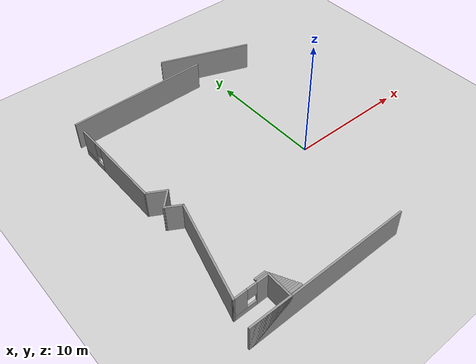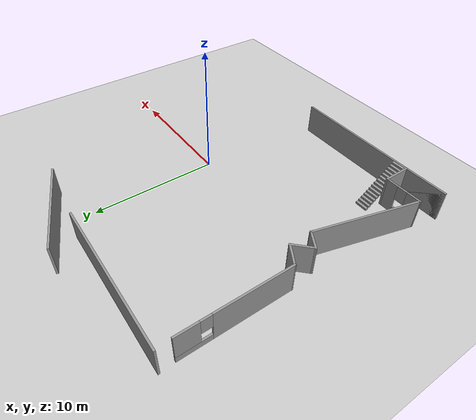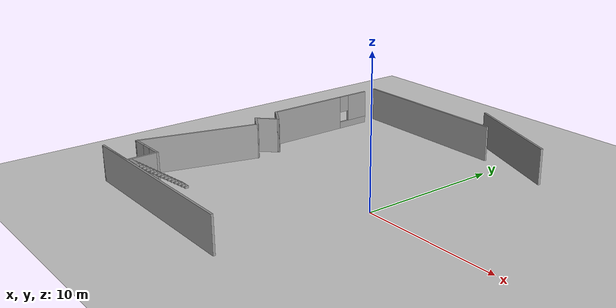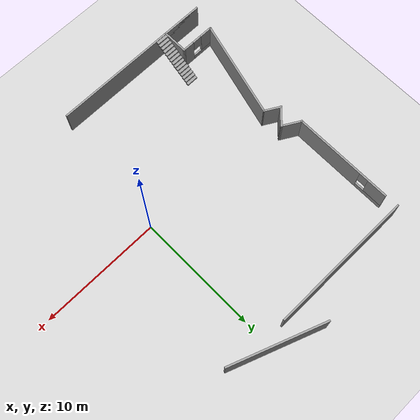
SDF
<sdf version="1.6">
 <world name="default">
  <model name="ground_plane">
   <static>1</static>
   <link name="link">
    <collision name="collision">
     <geometry><plane><normal>0 0 1</normal><size>100 100</size></plane></geometry>
     <surface><friction><ode><mu>100</mu><mu2>50</mu2></ode></friction></surface>
    </collision>
    <visual name="visual">
     <cast_shadows>0</cast_shadows>
     <geometry><plane><normal>0 0 1</normal><size>100 100</size></plane></geometry>
     <material>
      <script><uri>file://media/materials/scripts/gazebo.material</uri><name>Gazebo/Grey</name></script>
     </material>
    </visual>
   </link>
  </model>
  <model name="cierre_slaw_world_0">
   <link name="Stairs_0">
    <visual name="Stairs_0_Visual_0">
     <pose>-4.59466 -7.51518 0.083333 0 -0 0</pose>
     <geometry><box><size>1 0.233333 0.166667</size></box></geometry>
     <material>
      <script><uri>file://media/materials/scripts/gazebo.material</uri><name>Gazebo/Grey</name></script>
      <ambient>1 1 1 1</ambient>
      <diffuse>0.7 0.7 0.7 1</diffuse>
      <specular>0.01 0.01 0.01 1</specular>
      <emissive>0 0 0 1</emissive>
     </material>
    </visual>
    <visual name="Stairs_0_Visual_1">
     <pose>-4.59466 -7.74852 0.25 0 -0 0</pose>
     <geometry><box><size>1 0.233333 0.166667</size></box></geometry>
     <material>
      <script><uri>file://media/materials/scripts/gazebo.material</uri><name>Gazebo/Grey</name></script>
      <ambient>1 1 1 1</ambient>
      <diffuse>0.7 0.7 0.7 1</diffuse>
      <specular>0.01 0.01 0.01 1</specular>
      <emissive>0 0 0 1</emissive>
     </material>
    </visual>
    <visual name="Stairs_0_Visual_2">
     <pose>-4.59466 -7.98185 0.416667 0 -0 0</pose>
     <geometry><box><size>1 0.233333 0.166667</size></box></geometry>
     <material>
      <script><uri>file://media/materials/scripts/gazebo.material</uri><name>Gazebo/Grey</name></script>
      <ambient>1 1 1 1</ambient>
      <diffuse>0.7 0.7 0.7 1</diffuse>
      <specular>0.01 0.01 0.01 1</specular>
      <emissive>0 0 0 1</emissive>
     </material>
    </visual>
    <visual name="Stairs_0_Visual_3">
     <pose>-4.59466 -8.21518 0.583333 0 -0 0</pose>
     <geometry><box><size>1 0.233333 0.166667</size></box></geometry>
     <material>
      <script><uri>file://media/materials/scripts/gazebo.material</uri><name>Gazebo/Grey</name></script>
      <ambient>1 1 1 1</ambient>
      <diffuse>0.7 0.7 0.7 1</diffuse>
      <specular>0.01 0.01 0.01 1</specular>
      <emissive>0 0 0 1</emissive>
     </material>
    </visual>
    <visual name="Stairs_0_Visual_4">
     <pose>-4.59466 -8.44852 0.75 0 -0 0</pose>
     <geometry><box><size>1 0.233333 0.166667</size></box></geometry>
     <material>
      <script><uri>file://media/materials/scripts/gazebo.material</uri><name>Gazebo/Grey</name></script>
      <ambient>1 1 1 1</ambient>
      <diffuse>0.7 0.7 0.7 1</diffuse>
      <specular>0.01 0.01 0.01 1</specular>
      <emissive>0 0 0 1</emissive>
     </material>
    </visual>
    <visual name="Stairs_0_Visual_5">
     <pose>-4.59466 -8.68185 0.916667 0 -0 0</pose>
     <geometry><box><size>1 0.233333 0.166667</size></box></geometry>
     <material>
      <script><uri>file://media/materials/scripts/gazebo.material</uri><name>Gazebo/Grey</name></script>
      <ambient>1 1 1 1</ambient>
      <diffuse>0.7 0.7 0.7 1</diffuse>
      <specular>0.01 0.01 0.01 1</specular>
      <emissive>0 0 0 1</emissive>
     </material>
    </visual>
    <visual name="Stairs_0_Visual_6">
     <pose>-4.59466 -8.91518 1.08333 0 -0 0</pose>
     <geometry><box><size>1 0.233333 0.166667</size></box></geometry>
     <material>
      <script><uri>file://media/materials/scripts/gazebo.material</uri><name>Gazebo/Grey</name></script>
      <ambient>1 1 1 1</ambient>
      <diffuse>0.7 0.7 0.7 1</diffuse>
      <specular>0.01 0.01 0.01 1</specular>
      <emissive>0 0 0 1</emissive>
     </material>
    </visual>
    <visual name="Stairs_0_Visual_7">
     <pose>-4.59466 -9.14852 1.25 0 -0 0</pose>
     <geometry><box><size>1 0.233333 0.166667</size></box></geometry>
     <material>
      <script><uri>file://media/materials/scripts/gazebo.material</uri><name>Gazebo/Grey</name></script>
      <ambient>1 1 1 1</ambient>
      <diffuse>0.7 0.7 0.7 1</diffuse>
      <specular>0.01 0.01 0.01 1</specular>
      <emissive>0 0 0 1</emissive>
     </material>
    </visual>
    <visual name="Stairs_0_Visual_8">
     <pose>-4.59466 -9.38185 1.41667 0 -0 0</pose>
     <geometry><box><size>1 0.233333 0.166667</size></box></geometry>
     <material>
      <script><uri>file://media/materials/scripts/gazebo.material</uri><name>Gazebo/Grey</name></script>
      <ambient>1 1 1 1</ambient>
      <diffuse>0.7 0.7 0.7 1</diffuse>
      <specular>0.01 0.01 0.01 1</specular>
      <emissive>0 0 0 1</emissive>
     </material>
    </visual>
    <visual name="Stairs_0_Visual_9">
     <pose>-4.59466 -9.61518 1.58333 0 -0 0</pose>
     <geometry><box><size>1 0.233333 0.166667</size></box></geometry>
     <material>
      <script><uri>file://media/materials/scripts/gazebo.material</uri><name>Gazebo/Grey</name></script>
      <ambient>1 1 1 1</ambient>
      <diffuse>0.7 0.7 0.7 1</diffuse>
      <specular>0.01 0.01 0.01 1</specular>
      <emissive>0 0 0 1</emissive>
     </material>
    </visual>
    <visual name="Stairs_0_Visual_10">
     <pose>-4.59466 -9.84852 1.75 0 -0 0</pose>
     <geometry><box><size>1 0.233333 0.166667</size></box></geometry>
     <material>
      <script><uri>file://media/materials/scripts/gazebo.material</uri><name>Gazebo/Grey</name></script>
      <ambient>1 1 1 1</ambient>
      <diffuse>0.7 0.7 0.7 1</diffuse>
      <specular>0.01 0.01 0.01 1</specular>
      <emissive>0 0 0 1</emissive>
     </material>
    </visual>
    <visual name="Stairs_0_Visual_11">
     <pose>-4.59466 -10.0819 1.91667 0 -0 0</pose>
     <geometry><box><size>1 0.233333 0.166667</size></box></geometry>
     <material>
      <script><uri>file://media/materials/scripts/gazebo.material</uri><name>Gazebo/Grey</name></script>
      <ambient>1 1 1 1</ambient>
      <diffuse>0.7 0.7 0.7 1</diffuse>
      <specular>0.01 0.01 0.01 1</specular>
      <emissive>0 0 0 1</emissive>
     </material>
    </visual>
    <visual name="Stairs_0_Visual_12">
     <pose>-4.59466 -10.3152 2.08333 0 -0 0</pose>
     <geometry><box><size>1 0.233333 0.166667</size></box></geometry>
     <material>
      <script><uri>file://media/materials/scripts/gazebo.material</uri><name>Gazebo/Grey</name></script>
      <ambient>1 1 1 1</ambient>
      <diffuse>0.7 0.7 0.7 1</diffuse>
      <specular>0.01 0.01 0.01 1</specular>
      <emissive>0 0 0 1</emissive>
     </material>
    </visual>
    <visual name="Stairs_0_Visual_13">
     <pose>-4.59466 -10.5485 2.25 0 -0 0</pose>
     <geometry><box><size>1 0.233333 0.166667</size></box></geometry>
     <material>
      <script><uri>file://media/materials/scripts/gazebo.material</uri><name>Gazebo/Grey</name></script>
      <ambient>1 1 1 1</ambient>
      <diffuse>0.7 0.7 0.7 1</diffuse>
      <specular>0.01 0.01 0.01 1</specular>
      <emissive>0 0 0 1</emissive>
     </material>
    </visual>
    <visual name="Stairs_0_Visual_14">
     <pose>-4.59466 -10.7819 2.41667 0 -0 0</pose>
     <geometry><box><size>1 0.233333 0.166667</size></box></geometry>
     <material>
      <script><uri>file://media/materials/scripts/gazebo.material</uri><name>Gazebo/Grey</name></script>
      <ambient>1 1 1 1</ambient>
      <diffuse>0.7 0.7 0.7 1</diffuse>
      <specular>0.01 0.01 0.01 1</specular>
      <emissive>0 0 0 1</emissive>
     </material>
    </visual>
    <collision name="Stairs_0_Collision_0">
     <pose>-4.59466 -7.51518 0.083333 0 -0 0</pose>
     <geometry><box><size>1 0.233333 0.166667</size></box></geometry>
     <surface>
      <friction>
       <ode><mu>1</mu><mu2>1</mu2><fdir1>0 0 0</fdir1><slip1>0</slip1><slip2>0</slip2></ode>
       <torsional>
        <coefficient>1</coefficient>
        <patch_radius>0</patch_radius>
        <surface_radius>0</surface_radius>
        <use_patch_radius>1</use_patch_radius>
        <ode><slip>0</slip></ode>
       </torsional>
      </friction>
      <bounce><restitution_coefficient>0</restitution_coefficient><threshold>1e+06</threshold></bounce>
      <contact>
       <collide_without_contact>0</collide_without_contact>
       <collide_without_contact_bitmask>1</collide_without_contact_bitmask>
       <collide_bitmask>1</collide_bitmask>
       <ode>
        <soft_cfm>0</soft_cfm>
        <soft_erp>0.2</soft_erp>
        <kp>1e+13</kp>
        <kd>1</kd>
        <max_vel>0.01</max_vel>
        <min_depth>0</min_depth>
       </ode>
       <bullet>
        <split_impulse>1</split_impulse>
        <split_impulse_penetration_threshold>-0.01</split_impulse_penetration_threshold>
        <soft_cfm>0</soft_cfm>
        <soft_erp>0.2</soft_erp>
        <kp>1e+13</kp>
        <kd>1</kd>
       </bullet>
      </contact>
     </surface>
    </collision>
    <collision name="Stairs_0_Collision_1">
     <pose>-4.59466 -7.74852 0.25 0 -0 0</pose>
     <geometry><box><size>1 0.233333 0.166667</size></box></geometry>
     <surface>
      <friction>
       <ode><mu>1</mu><mu2>1</mu2><fdir1>0 0 0</fdir1><slip1>0</slip1><slip2>0</slip2></ode>
       <torsional>
        <coefficient>1</coefficient>
        <patch_radius>0</patch_radius>
        <surface_radius>0</surface_radius>
        <use_patch_radius>1</use_patch_radius>
        <ode><slip>0</slip></ode>
       </torsional>
      </friction>
      <bounce><restitution_coefficient>0</restitution_coefficient><threshold>1e+06</threshold></bounce>
      <contact>
       <collide_without_contact>0</collide_without_contact>
       <collide_without_contact_bitmask>1</collide_without_contact_bitmask>
       <collide_bitmask>1</collide_bitmask>
       <ode>
        <soft_cfm>0</soft_cfm>
        <soft_erp>0.2</soft_erp>
        <kp>1e+13</kp>
        <kd>1</kd>
        <max_vel>0.01</max_vel>
        <min_depth>0</min_depth>
       </ode>
       <bullet>
        <split_impulse>1</split_impulse>
        <split_impulse_penetration_threshold>-0.01</split_impulse_penetration_threshold>
        <soft_cfm>0</soft_cfm>
        <soft_erp>0.2</soft_erp>
        <kp>1e+13</kp>
        <kd>1</kd>
       </bullet>
      </contact>
     </surface>
    </collision>
    <collision name="Stairs_0_Collision_2">
     <pose>-4.59466 -7.98185 0.416667 0 -0 0</pose>
     <geometry><box><size>1 0.233333 0.166667</size></box></geometry>
     <surface>
      <friction>
       <ode><mu>1</mu><mu2>1</mu2><fdir1>0 0 0</fdir1><slip1>0</slip1><slip2>0</slip2></ode>
       <torsional>
        <coefficient>1</coefficient>
        <patch_radius>0</patch_radius>
        <surface_radius>0</surface_radius>
        <use_patch_radius>1</use_patch_radius>
        <ode><slip>0</slip></ode>
       </torsional>
      </friction>
      <bounce><restitution_coefficient>0</restitution_coefficient><threshold>1e+06</threshold></bounce>
      <contact>
       <collide_without_contact>0</collide_without_contact>
       <collide_without_contact_bitmask>1</collide_without_contact_bitmask>
       <collide_bitmask>1</collide_bitmask>
       <ode>
        <soft_cfm>0</soft_cfm>
        <soft_erp>0.2</soft_erp>
        <kp>1e+13</kp>
        <kd>1</kd>
        <max_vel>0.01</max_vel>
        <min_depth>0</min_depth>
       </ode>
       <bullet>
        <split_impulse>1</split_impulse>
        <split_impulse_penetration_threshold>-0.01</split_impulse_penetration_threshold>
        <soft_cfm>0</soft_cfm>
        <soft_erp>0.2</soft_erp>
        <kp>1e+13</kp>
        <kd>1</kd>
       </bullet>
      </contact>
     </surface>
    </collision>
    <collision name="Stairs_0_Collision_3">
     <pose>-4.59466 -8.21518 0.583333 0 -0 0</pose>
     <geometry><box><size>1 0.233333 0.166667</size></box></geometry>
     <surface>
      <friction>
       <ode><mu>1</mu><mu2>1</mu2><fdir1>0 0 0</fdir1><slip1>0</slip1><slip2>0</slip2></ode>
       <torsional>
        <coefficient>1</coefficient>
        <patch_radius>0</patch_radius>
        <surface_radius>0</surface_radius>
        <use_patch_radius>1</use_patch_radius>
        <ode><slip>0</slip></ode>
       </torsional>
      </friction>
      <bounce><restitution_coefficient>0</restitution_coefficient><threshold>1e+06</threshold></bounce>
      <contact>
       <collide_without_contact>0</collide_without_contact>
       <collide_without_contact_bitmask>1</collide_without_contact_bitmask>
       <collide_bitmask>1</collide_bitmask>
       <ode>
        <soft_cfm>0</soft_cfm>
        <soft_erp>0.2</soft_erp>
        <kp>1e+13</kp>
        <kd>1</kd>
        <max_vel>0.01</max_vel>
        <min_depth>0</min_depth>
       </ode>
       <bullet>
        <split_impulse>1</split_impulse>
        <split_impulse_penetration_threshold>-0.01</split_impulse_penetration_threshold>
        <soft_cfm>0</soft_cfm>
        <soft_erp>0.2</soft_erp>
        <kp>1e+13</kp>
        <kd>1</kd>
       </bullet>
      </contact>
     </surface>
    </collision>
    <collision name="Stairs_0_Collision_5">
     <pose>-4.59466 -8.68185 0.916667 0 -0 0</pose>
     <geometry><box><size>1 0.233333 0.166667</size></box></geometry>
     <surface>
      <friction>
       <ode><mu>1</mu><mu2>1</mu2><fdir1>0 0 0</fdir1><slip1>0</slip1><slip2>0</slip2></ode>
       <torsional>
        <coefficient>1</coefficient>
        <patch_radius>0</patch_radius>
        <surface_radius>0</surface_radius>
        <use_patch_radius>1</use_patch_radius>
        <ode><slip>0</slip></ode>
       </torsional>
      </friction>
      <bounce><restitution_coefficient>0</restitution_coefficient><threshold>1e+06</threshold></bounce>
      <contact>
       <collide_without_contact>0</collide_without_contact>
       <collide_without_contact_bitmask>1</collide_without_contact_bitmask>
       <collide_bitmask>1</collide_bitmask>
       <ode>
        <soft_cfm>0</soft_cfm>
        <soft_erp>0.2</soft_erp>
        <kp>1e+13</kp>
        <kd>1</kd>
        <max_vel>0.01</max_vel>
        <min_depth>0</min_depth>
       </ode>
       <bullet>
        <split_impulse>1</split_impulse>
        <split_impulse_penetration_threshold>-0.01</split_impulse_penetration_threshold>
        <soft_cfm>0</soft_cfm>
        <soft_erp>0.2</soft_erp>
        <kp>1e+13</kp>
        <kd>1</kd>
       </bullet>
      </contact>
     </surface>
    </collision>
    <collision name="Stairs_0_Collision_4">
     <pose>-4.59466 -8.44852 0.75 0 -0 0</pose>
     <geometry><box><size>1 0.233333 0.166667</size></box></geometry>
     <surface>
      <friction>
       <ode><mu>1</mu><mu2>1</mu2><fdir1>0 0 0</fdir1><slip1>0</slip1><slip2>0</slip2></ode>
       <torsional>
        <coefficient>1</coefficient>
        <patch_radius>0</patch_radius>
        <surface_radius>0</surface_radius>
        <use_patch_radius>1</use_patch_radius>
        <ode><slip>0</slip></ode>
       </torsional>
      </friction>
      <bounce><restitution_coefficient>0</restitution_coefficient><threshold>1e+06</threshold></bounce>
      <contact>
       <collide_without_contact>0</collide_without_contact>
       <collide_without_contact_bitmask>1</collide_without_contact_bitmask>
       <collide_bitmask>1</collide_bitmask>
       <ode>
        <soft_cfm>0</soft_cfm>
        <soft_erp>0.2</soft_erp>
        <kp>1e+13</kp>
        <kd>1</kd>
        <max_vel>0.01</max_vel>
        <min_depth>0</min_depth>
       </ode>
       <bullet>
        <split_impulse>1</split_impulse>
        <split_impulse_penetration_threshold>-0.01</split_impulse_penetration_threshold>
        <soft_cfm>0</soft_cfm>
        <soft_erp>0.2</soft_erp>
        <kp>1e+13</kp>
        <kd>1</kd>
       </bullet>
      </contact>
     </surface>
    </collision>
    <collision name="Stairs_0_Collision_6">
     <pose>-4.59466 -8.91518 1.08333 0 -0 0</pose>
     <geometry><box><size>1 0.233333 0.166667</size></box></geometry>
     <surface>
      <friction>
       <ode><mu>1</mu><mu2>1</mu2><fdir1>0 0 0</fdir1><slip1>0</slip1><slip2>0</slip2></ode>
       <torsional>
        <coefficient>1</coefficient>
        <patch_radius>0</patch_radius>
        <surface_radius>0</surface_radius>
        <use_patch_radius>1</use_patch_radius>
        <ode><slip>0</slip></ode>
       </torsional>
      </friction>
      <bounce><restitution_coefficient>0</restitution_coefficient><threshold>1e+06</threshold></bounce>
      <contact>
       <collide_without_contact>0</collide_without_contact>
       <collide_without_contact_bitmask>1</collide_without_contact_bitmask>
       <collide_bitmask>1</collide_bitmask>
       <ode>
        <soft_cfm>0</soft_cfm>
        <soft_erp>0.2</soft_erp>
        <kp>1e+13</kp>
        <kd>1</kd>
        <max_vel>0.01</max_vel>
        <min_depth>0</min_depth>
       </ode>
       <bullet>
        <split_impulse>1</split_impulse>
        <split_impulse_penetration_threshold>-0.01</split_impulse_penetration_threshold>
        <soft_cfm>0</soft_cfm>
        <soft_erp>0.2</soft_erp>
        <kp>1e+13</kp>
        <kd>1</kd>
       </bullet>
      </contact>
     </surface>
    </collision>
    <collision name="Stairs_0_Collision_7">
     <pose>-4.59466 -9.14852 1.25 0 -0 0</pose>
     <geometry><box><size>1 0.233333 0.166667</size></box></geometry>
     <surface>
      <friction>
       <ode><mu>1</mu><mu2>1</mu2><fdir1>0 0 0</fdir1><slip1>0</slip1><slip2>0</slip2></ode>
       <torsional>
        <coefficient>1</coefficient>
        <patch_radius>0</patch_radius>
        <surface_radius>0</surface_radius>
        <use_patch_radius>1</use_patch_radius>
        <ode><slip>0</slip></ode>
       </torsional>
      </friction>
      <bounce><restitution_coefficient>0</restitution_coefficient><threshold>1e+06</threshold></bounce>
      <contact>
       <collide_without_contact>0</collide_without_contact>
       <collide_without_contact_bitmask>1</collide_without_contact_bitmask>
       <collide_bitmask>1</collide_bitmask>
       <ode>
        <soft_cfm>0</soft_cfm>
        <soft_erp>0.2</soft_erp>
        <kp>1e+13</kp>
        <kd>1</kd>
        <max_vel>0.01</max_vel>
        <min_depth>0</min_depth>
       </ode>
       <bullet>
        <split_impulse>1</split_impulse>
        <split_impulse_penetration_threshold>-0.01</split_impulse_penetration_threshold>
        <soft_cfm>0</soft_cfm>
        <soft_erp>0.2</soft_erp>
        <kp>1e+13</kp>
        <kd>1</kd>
       </bullet>
      </contact>
     </surface>
    </collision>
    <collision name="Stairs_0_Collision_8">
     <pose>-4.59466 -9.38185 1.41667 0 -0 0</pose>
     <geometry><box><size>1 0.233333 0.166667</size></box></geometry>
     <surface>
      <friction>
       <ode><mu>1</mu><mu2>1</mu2><fdir1>0 0 0</fdir1><slip1>0</slip1><slip2>0</slip2></ode>
       <torsional>
        <coefficient>1</coefficient>
        <patch_radius>0</patch_radius>
        <surface_radius>0</surface_radius>
        <use_patch_radius>1</use_patch_radius>
        <ode><slip>0</slip></ode>
       </torsional>
      </friction>
      <bounce><restitution_coefficient>0</restitution_coefficient><threshold>1e+06</threshold></bounce>
      <contact>
       <collide_without_contact>0</collide_without_contact>
       <collide_without_contact_bitmask>1</collide_without_contact_bitmask>
       <collide_bitmask>1</collide_bitmask>
       <ode>
        <soft_cfm>0</soft_cfm>
        <soft_erp>0.2</soft_erp>
        <kp>1e+13</kp>
        <kd>1</kd>
        <max_vel>0.01</max_vel>
        <min_depth>0</min_depth>
       </ode>
       <bullet>
        <split_impulse>1</split_impulse>
        <split_impulse_penetration_threshold>-0.01</split_impulse_penetration_threshold>
        <soft_cfm>0</soft_cfm>
        <soft_erp>0.2</soft_erp>
        <kp>1e+13</kp>
        <kd>1</kd>
       </bullet>
      </contact>
     </surface>
    </collision>
    <collision name="Stairs_0_Collision_9">
     <pose>-4.59466 -9.61518 1.58333 0 -0 0</pose>
     <geometry><box><size>1 0.233333 0.166667</size></box></geometry>
     <surface>
      <friction>
       <ode><mu>1</mu><mu2>1</mu2><fdir1>0 0 0</fdir1><slip1>0</slip1><slip2>0</slip2></ode>
       <torsional>
        <coefficient>1</coefficient>
        <patch_radius>0</patch_radius>
        <surface_radius>0</surface_radius>
        <use_patch_radius>1</use_patch_radius>
        <ode><slip>0</slip></ode>
       </torsional>
      </friction>
      <bounce><restitution_coefficient>0</restitution_coefficient><threshold>1e+06</threshold></bounce>
      <contact>
       <collide_without_contact>0</collide_without_contact>
       <collide_without_contact_bitmask>1</collide_without_contact_bitmask>
       <collide_bitmask>1</collide_bitmask>
       <ode>
        <soft_cfm>0</soft_cfm>
        <soft_erp>0.2</soft_erp>
        <kp>1e+13</kp>
        <kd>1</kd>
        <max_vel>0.01</max_vel>
        <min_depth>0</min_depth>
       </ode>
       <bullet>
        <split_impulse>1</split_impulse>
        <split_impulse_penetration_threshold>-0.01</split_impulse_penetration_threshold>
        <soft_cfm>0</soft_cfm>
        <soft_erp>0.2</soft_erp>
        <kp>1e+13</kp>
        <kd>1</kd>
       </bullet>
      </contact>
     </surface>
    </collision>
    <collision name="Stairs_0_Collision_10">
     <pose>-4.59466 -9.84852 1.75 0 -0 0</pose>
     <geometry><box><size>1 0.233333 0.166667</size></box></geometry>
     <surface>
      <friction>
       <ode><mu>1</mu><mu2>1</mu2><fdir1>0 0 0</fdir1><slip1>0</slip1><slip2>0</slip2></ode>
       <torsional>
        <coefficient>1</coefficient>
        <patch_radius>0</patch_radius>
        <surface_radius>0</surface_radius>
        <use_patch_radius>1</use_patch_radius>
        <ode><slip>0</slip></ode>
       </torsional>
      </friction>
      <bounce><restitution_coefficient>0</restitution_coefficient><threshold>1e+06</threshold></bounce>
      <contact>
       <collide_without_contact>0</collide_without_contact>
       <collide_without_contact_bitmask>1</collide_without_contact_bitmask>
       <collide_bitmask>1</collide_bitmask>
       <ode>
        <soft_cfm>0</soft_cfm>
        <soft_erp>0.2</soft_erp>
        <kp>1e+13</kp>
        <kd>1</kd>
        <max_vel>0.01</max_vel>
        <min_depth>0</min_depth>
       </ode>
       <bullet>
        <split_impulse>1</split_impulse>
        <split_impulse_penetration_threshold>-0.01</split_impulse_penetration_threshold>
        <soft_cfm>0</soft_cfm>
        <soft_erp>0.2</soft_erp>
        <kp>1e+13</kp>
        <kd>1</kd>
       </bullet>
      </contact>
     </surface>
    </collision>
    <collision name="Stairs_0_Collision_13">
     <pose>-4.59466 -10.5485 2.25 0 -0 0</pose>
     <geometry><box><size>1 0.233333 0.166667</size></box></geometry>
     <surface>
      <friction>
       <ode><mu>1</mu><mu2>1</mu2><fdir1>0 0 0</fdir1><slip1>0</slip1><slip2>0</slip2></ode>
       <torsional>
        <coefficient>1</coefficient>
        <patch_radius>0</patch_radius>
        <surface_radius>0</surface_radius>
        <use_patch_radius>1</use_patch_radius>
        <ode><slip>0</slip></ode>
       </torsional>
      </friction>
      <bounce><restitution_coefficient>0</restitution_coefficient><threshold>1e+06</threshold></bounce>
      <contact>
       <collide_without_contact>0</collide_without_contact>
       <collide_without_contact_bitmask>1</collide_without_contact_bitmask>
       <collide_bitmask>1</collide_bitmask>
       <ode>
        <soft_cfm>0</soft_cfm>
        <soft_erp>0.2</soft_erp>
        <kp>1e+13</kp>
        <kd>1</kd>
        <max_vel>0.01</max_vel>
        <min_depth>0</min_depth>
       </ode>
       <bullet>
        <split_impulse>1</split_impulse>
        <split_impulse_penetration_threshold>-0.01</split_impulse_penetration_threshold>
        <soft_cfm>0</soft_cfm>
        <soft_erp>0.2</soft_erp>
        <kp>1e+13</kp>
        <kd>1</kd>
       </bullet>
      </contact>
     </surface>
    </collision>
    <collision name="Stairs_0_Collision_11">
     <pose>-4.59466 -10.0819 1.91667 0 -0 0</pose>
     <geometry><box><size>1 0.233333 0.166667</size></box></geometry>
     <surface>
      <friction>
       <ode><mu>1</mu><mu2>1</mu2><fdir1>0 0 0</fdir1><slip1>0</slip1><slip2>0</slip2></ode>
       <torsional>
        <coefficient>1</coefficient>
        <patch_radius>0</patch_radius>
        <surface_radius>0</surface_radius>
        <use_patch_radius>1</use_patch_radius>
        <ode><slip>0</slip></ode>
       </torsional>
      </friction>
      <bounce><restitution_coefficient>0</restitution_coefficient><threshold>1e+06</threshold></bounce>
      <contact>
       <collide_without_contact>0</collide_without_contact>
       <collide_without_contact_bitmask>1</collide_without_contact_bitmask>
       <collide_bitmask>1</collide_bitmask>
       <ode>
        <soft_cfm>0</soft_cfm>
        <soft_erp>0.2</soft_erp>
        <kp>1e+13</kp>
        <kd>1</kd>
        <max_vel>0.01</max_vel>
        <min_depth>0</min_depth>
       </ode>
       <bullet>
        <split_impulse>1</split_impulse>
        <split_impulse_penetration_threshold>-0.01</split_impulse_penetration_threshold>
        <soft_cfm>0</soft_cfm>
        <soft_erp>0.2</soft_erp>
        <kp>1e+13</kp>
        <kd>1</kd>
       </bullet>
      </contact>
     </surface>
    </collision>
    <collision name="Stairs_0_Collision_12">
     <pose>-4.59466 -10.3152 2.08333 0 -0 0</pose>
     <geometry><box><size>1 0.233333 0.166667</size></box></geometry>
     <surface>
      <friction>
       <ode><mu>1</mu><mu2>1</mu2><fdir1>0 0 0</fdir1><slip1>0</slip1><slip2>0</slip2></ode>
       <torsional>
        <coefficient>1</coefficient>
        <patch_radius>0</patch_radius>
        <surface_radius>0</surface_radius>
        <use_patch_radius>1</use_patch_radius>
        <ode><slip>0</slip></ode>
       </torsional>
      </friction>
      <bounce><restitution_coefficient>0</restitution_coefficient><threshold>1e+06</threshold></bounce>
      <contact>
       <collide_without_contact>0</collide_without_contact>
       <collide_without_contact_bitmask>1</collide_without_contact_bitmask>
       <collide_bitmask>1</collide_bitmask>
       <ode>
        <soft_cfm>0</soft_cfm>
        <soft_erp>0.2</soft_erp>
        <kp>1e+13</kp>
        <kd>1</kd>
        <max_vel>0.01</max_vel>
        <min_depth>0</min_depth>
       </ode>
       <bullet>
        <split_impulse>1</split_impulse>
        <split_impulse_penetration_threshold>-0.01</split_impulse_penetration_threshold>
        <soft_cfm>0</soft_cfm>
        <soft_erp>0.2</soft_erp>
        <kp>1e+13</kp>
        <kd>1</kd>
       </bullet>
      </contact>
     </surface>
    </collision>
    <collision name="Stairs_0_Collision_14">
     <pose>-4.59466 -10.7819 2.41667 0 -0 0</pose>
     <geometry><box><size>1 0.233333 0.166667</size></box></geometry>
     <surface>
      <friction>
       <ode><mu>1</mu><mu2>1</mu2><fdir1>0 0 0</fdir1><slip1>0</slip1><slip2>0</slip2></ode>
       <torsional>
        <coefficient>1</coefficient>
        <patch_radius>0</patch_radius>
        <surface_radius>0</surface_radius>
        <use_patch_radius>1</use_patch_radius>
        <ode><slip>0</slip></ode>
       </torsional>
      </friction>
      <bounce><restitution_coefficient>0</restitution_coefficient><threshold>1e+06</threshold></bounce>
      <contact>
       <collide_without_contact>0</collide_without_contact>
       <collide_without_contact_bitmask>1</collide_without_contact_bitmask>
       <collide_bitmask>1</collide_bitmask>
       <ode>
        <soft_cfm>0</soft_cfm>
        <soft_erp>0.2</soft_erp>
        <kp>1e+13</kp>
        <kd>1</kd>
        <max_vel>0.01</max_vel>
        <min_depth>0</min_depth>
       </ode>
       <bullet>
        <split_impulse>1</split_impulse>
        <split_impulse_penetration_threshold>-0.01</split_impulse_penetration_threshold>
        <soft_cfm>0</soft_cfm>
        <soft_erp>0.2</soft_erp>
        <kp>1e+13</kp>
        <kd>1</kd>
       </bullet>
      </contact>
     </surface>
    </collision>
   </link>
   <link name="Wall_23">
    <pose>-6.85744 -10.9944 0 0 -0 0</pose>
    <visual name="Wall_23_Visual">
     <pose>0 0 1.25 0 -0 0</pose>
     <geometry><box><size>3.5 0.15 2.5</size></box></geometry>
     <material>
      <script><uri>file://media/materials/scripts/gazebo.material</uri><name>Gazebo/Grey</name></script>
      <ambient>1 1 1 1</ambient>
      <diffuse>0.7 0.7 0.7 1</diffuse>
      <specular>0.01 0.01 0.01 1</specular>
      <emissive>0 0 0 1</emissive>
     </material>
    </visual>
    <collision name="Wall_23_Collision">
     <pose>0 0 1.25 0 -0 0</pose>
     <geometry><box><size>3.5 0.15 2.5</size></box></geometry>
     <surface>
      <friction>
       <ode><mu>1</mu><mu2>1</mu2><fdir1>0 0 0</fdir1><slip1>0</slip1><slip2>0</slip2></ode>
       <torsional>
        <coefficient>1</coefficient>
        <patch_radius>0</patch_radius>
        <surface_radius>0</surface_radius>
        <use_patch_radius>1</use_patch_radius>
        <ode><slip>0</slip></ode>
       </torsional>
      </friction>
      <bounce><restitution_coefficient>0</restitution_coefficient><threshold>1e+06</threshold></bounce>
      <contact>
       <collide_without_contact>0</collide_without_contact>
       <collide_without_contact_bitmask>1</collide_without_contact_bitmask>
       <collide_bitmask>1</collide_bitmask>
       <ode>
        <soft_cfm>0</soft_cfm>
        <soft_erp>0.2</soft_erp>
        <kp>1e+13</kp>
        <kd>1</kd>
        <max_vel>0.01</max_vel>
        <min_depth>0</min_depth>
       </ode>
       <bullet>
        <split_impulse>1</split_impulse>
        <split_impulse_penetration_threshold>-0.01</split_impulse_penetration_threshold>
        <soft_cfm>0</soft_cfm>
        <soft_erp>0.2</soft_erp>
        <kp>1e+13</kp>
        <kd>1</kd>
       </bullet>
      </contact>
     </surface>
    </collision>
   </link>
   <link name="Wall_24">
    <pose>-5.18244 -9.94435 0 0 -0 1.5708</pose>
    <visual name="Wall_24_Visual">
     <pose>0 0 1.25 0 -0 0</pose>
     <geometry><box><size>2.25 0.15 2.5</size></box></geometry>
     <material>
      <script><uri>file://media/materials/scripts/gazebo.material</uri><name>Gazebo/Grey</name></script>
      <ambient>1 1 1 1</ambient>
      <diffuse>0.7 0.7 0.7 1</diffuse>
      <specular>0.01 0.01 0.01 1</specular>
      <emissive>0 0 0 1</emissive>
     </material>
    </visual>
    <collision name="Wall_24_Collision">
     <pose>0 0 1.25 0 -0 0</pose>
     <geometry><box><size>2.25 0.15 2.5</size></box></geometry>
     <surface>
      <friction>
       <ode><mu>1</mu><mu2>1</mu2><fdir1>0 0 0</fdir1><slip1>0</slip1><slip2>0</slip2></ode>
       <torsional>
        <coefficient>1</coefficient>
        <patch_radius>0</patch_radius>
        <surface_radius>0</surface_radius>
        <use_patch_radius>1</use_patch_radius>
        <ode><slip>0</slip></ode>
       </torsional>
      </friction>
      <bounce><restitution_coefficient>0</restitution_coefficient><threshold>1e+06</threshold></bounce>
      <contact>
       <collide_without_contact>0</collide_without_contact>
       <collide_without_contact_bitmask>1</collide_without_contact_bitmask>
       <collide_bitmask>1</collide_bitmask>
       <ode>
        <soft_cfm>0</soft_cfm>
        <soft_erp>0.2</soft_erp>
        <kp>1e+13</kp>
        <kd>1</kd>
        <max_vel>0.01</max_vel>
        <min_depth>0</min_depth>
       </ode>
       <bullet>
        <split_impulse>1</split_impulse>
        <split_impulse_penetration_threshold>-0.01</split_impulse_penetration_threshold>
        <soft_cfm>0</soft_cfm>
        <soft_erp>0.2</soft_erp>
        <kp>1e+13</kp>
        <kd>1</kd>
       </bullet>
      </contact>
     </surface>
    </collision>
   </link>
   <link name="Wall_25">
    <pose>-6.60744 -8.89435 0 0 -0 3.14159</pose>
    <visual name="Wall_25_Visual_0">
     <pose>-0.971946 0 1.25 0 -0 0</pose>
     <geometry><box><size>1.05611 0.15 2.5</size></box></geometry>
     <material>
      <script><uri>file://media/materials/scripts/gazebo.material</uri><name>Gazebo/Grey</name></script>
      <ambient>1 1 1 1</ambient>
      <diffuse>0.7 0.7 0.7 1</diffuse>
      <specular>0.01 0.01 0.01 1</specular>
      <emissive>0 0 0 1</emissive>
     </material>
    </visual>
    <visual name="Wall_25_Visual_1">
     <pose>0.528054 0 0.25 0 -0 0</pose>
     <geometry><box><size>1.94389 0.15 0.5</size></box></geometry>
     <material>
      <script><uri>file://media/materials/scripts/gazebo.material</uri><name>Gazebo/Grey</name></script>
      <ambient>1 1 1 1</ambient>
      <diffuse>0.7 0.7 0.7 1</diffuse>
      <specular>0.01 0.01 0.01 1</specular>
      <emissive>0 0 0 1</emissive>
     </material>
    </visual>
    <visual name="Wall_25_Visual_2">
     <pose>0.928054 0 1.5 0 -0 0</pose>
     <geometry><box><size>1.14389 0.15 2</size></box></geometry>
     <material>
      <script><uri>file://media/materials/scripts/gazebo.material</uri><name>Gazebo/Grey</name></script>
      <ambient>1 1 1 1</ambient>
      <diffuse>0.7 0.7 0.7 1</diffuse>
      <specular>0.01 0.01 0.01 1</specular>
      <emissive>0 0 0 1</emissive>
     </material>
    </visual>
    <visual name="Wall_25_Visual_3">
     <pose>-0.043892 0 1.9 0 -0 0</pose>
     <geometry><box><size>0.8 0.15 1.2</size></box></geometry>
     <material>
      <script><uri>file://media/materials/scripts/gazebo.material</uri><name>Gazebo/Grey</name></script>
      <ambient>1 1 1 1</ambient>
      <diffuse>0.7 0.7 0.7 1</diffuse>
      <specular>0.01 0.01 0.01 1</specular>
      <emissive>0 0 0 1</emissive>
     </material>
    </visual>
    <collision name="Wall_25_Collision_0">
     <pose>-0.971946 0 1.25 0 -0 0</pose>
     <geometry><box><size>1.05611 0.15 2.5</size></box></geometry>
     <surface>
      <friction>
       <ode><mu>1</mu><mu2>1</mu2><fdir1>0 0 0</fdir1><slip1>0</slip1><slip2>0</slip2></ode>
       <torsional>
        <coefficient>1</coefficient>
        <patch_radius>0</patch_radius>
        <surface_radius>0</surface_radius>
        <use_patch_radius>1</use_patch_radius>
        <ode><slip>0</slip></ode>
       </torsional>
      </friction>
      <bounce><restitution_coefficient>0</restitution_coefficient><threshold>1e+06</threshold></bounce>
      <contact>
       <collide_without_contact>0</collide_without_contact>
       <collide_without_contact_bitmask>1</collide_without_contact_bitmask>
       <collide_bitmask>1</collide_bitmask>
       <ode>
        <soft_cfm>0</soft_cfm>
        <soft_erp>0.2</soft_erp>
        <kp>1e+13</kp>
        <kd>1</kd>
        <max_vel>0.01</max_vel>
        <min_depth>0</min_depth>
       </ode>
       <bullet>
        <split_impulse>1</split_impulse>
        <split_impulse_penetration_threshold>-0.01</split_impulse_penetration_threshold>
        <soft_cfm>0</soft_cfm>
        <soft_erp>0.2</soft_erp>
        <kp>1e+13</kp>
        <kd>1</kd>
       </bullet>
      </contact>
     </surface>
    </collision>
    <collision name="Wall_25_Collision_1">
     <pose>0.528054 0 0.25 0 -0 0</pose>
     <geometry><box><size>1.94389 0.15 0.5</size></box></geometry>
     <surface>
      <friction>
       <ode><mu>1</mu><mu2>1</mu2><fdir1>0 0 0</fdir1><slip1>0</slip1><slip2>0</slip2></ode>
       <torsional>
        <coefficient>1</coefficient>
        <patch_radius>0</patch_radius>
        <surface_radius>0</surface_radius>
        <use_patch_radius>1</use_patch_radius>
        <ode><slip>0</slip></ode>
       </torsional>
      </friction>
      <bounce><restitution_coefficient>0</restitution_coefficient><threshold>1e+06</threshold></bounce>
      <contact>
       <collide_without_contact>0</collide_without_contact>
       <collide_without_contact_bitmask>1</collide_without_contact_bitmask>
       <collide_bitmask>1</collide_bitmask>
       <ode>
        <soft_cfm>0</soft_cfm>
        <soft_erp>0.2</soft_erp>
        <kp>1e+13</kp>
        <kd>1</kd>
        <max_vel>0.01</max_vel>
        <min_depth>0</min_depth>
       </ode>
       <bullet>
        <split_impulse>1</split_impulse>
        <split_impulse_penetration_threshold>-0.01</split_impulse_penetration_threshold>
        <soft_cfm>0</soft_cfm>
        <soft_erp>0.2</soft_erp>
        <kp>1e+13</kp>
        <kd>1</kd>
       </bullet>
      </contact>
     </surface>
    </collision>
    <collision name="Wall_25_Collision_2">
     <pose>0.928054 0 1.5 0 -0 0</pose>
     <geometry><box><size>1.14389 0.15 2</size></box></geometry>
     <surface>
      <friction>
       <ode><mu>1</mu><mu2>1</mu2><fdir1>0 0 0</fdir1><slip1>0</slip1><slip2>0</slip2></ode>
       <torsional>
        <coefficient>1</coefficient>
        <patch_radius>0</patch_radius>
        <surface_radius>0</surface_radius>
        <use_patch_radius>1</use_patch_radius>
        <ode><slip>0</slip></ode>
       </torsional>
      </friction>
      <bounce><restitution_coefficient>0</restitution_coefficient><threshold>1e+06</threshold></bounce>
      <contact>
       <collide_without_contact>0</collide_without_contact>
       <collide_without_contact_bitmask>1</collide_without_contact_bitmask>
       <collide_bitmask>1</collide_bitmask>
       <ode>
        <soft_cfm>0</soft_cfm>
        <soft_erp>0.2</soft_erp>
        <kp>1e+13</kp>
        <kd>1</kd>
        <max_vel>0.01</max_vel>
        <min_depth>0</min_depth>
       </ode>
       <bullet>
        <split_impulse>1</split_impulse>
        <split_impulse_penetration_threshold>-0.01</split_impulse_penetration_threshold>
        <soft_cfm>0</soft_cfm>
        <soft_erp>0.2</soft_erp>
        <kp>1e+13</kp>
        <kd>1</kd>
       </bullet>
      </contact>
     </surface>
    </collision>
    <collision name="Wall_25_Collision_3">
     <pose>-0.043892 0 1.9 0 -0 0</pose>
     <geometry><box><size>0.8 0.15 1.2</size></box></geometry>
     <surface>
      <friction>
       <ode><mu>1</mu><mu2>1</mu2><fdir1>0 0 0</fdir1><slip1>0</slip1><slip2>0</slip2></ode>
       <torsional>
        <coefficient>1</coefficient>
        <patch_radius>0</patch_radius>
        <surface_radius>0</surface_radius>
        <use_patch_radius>1</use_patch_radius>
        <ode><slip>0</slip></ode>
       </torsional>
      </friction>
      <bounce><restitution_coefficient>0</restitution_coefficient><threshold>1e+06</threshold></bounce>
      <contact>
       <collide_without_contact>0</collide_without_contact>
       <collide_without_contact_bitmask>1</collide_without_contact_bitmask>
       <collide_bitmask>1</collide_bitmask>
       <ode>
        <soft_cfm>0</soft_cfm>
        <soft_erp>0.2</soft_erp>
        <kp>1e+13</kp>
        <kd>1</kd>
        <max_vel>0.01</max_vel>
        <min_depth>0</min_depth>
       </ode>
       <bullet>
        <split_impulse>1</split_impulse>
        <split_impulse_penetration_threshold>-0.01</split_impulse_penetration_threshold>
        <soft_cfm>0</soft_cfm>
        <soft_erp>0.2</soft_erp>
        <kp>1e+13</kp>
        <kd>1</kd>
       </bullet>
      </contact>
     </surface>
    </collision>
   </link>
   <link name="Wall_26">
    <pose>-6.95187 -4.86161 0 0 -0 1.309</pose>
    <visual name="Wall_26_Visual">
     <pose>0 0 1.25 0 -0 0</pose>
     <geometry><box><size>8.5 0.15 2.5</size></box></geometry>
     <material>
      <script><uri>file://media/materials/scripts/gazebo.material</uri><name>Gazebo/Grey</name></script>
      <ambient>1 1 1 1</ambient>
      <diffuse>0.7 0.7 0.7 1</diffuse>
      <specular>0.01 0.01 0.01 1</specular>
      <emissive>0 0 0 1</emissive>
     </material>
    </visual>
    <collision name="Wall_26_Collision">
     <pose>0 0 1.25 0 -0 0</pose>
     <geometry><box><size>8.5 0.15 2.5</size></box></geometry>
     <surface>
      <friction>
       <ode><mu>1</mu><mu2>1</mu2><fdir1>0 0 0</fdir1><slip1>0</slip1><slip2>0</slip2></ode>
       <torsional>
        <coefficient>1</coefficient>
        <patch_radius>0</patch_radius>
        <surface_radius>0</surface_radius>
        <use_patch_radius>1</use_patch_radius>
        <ode><slip>0</slip></ode>
       </torsional>
      </friction>
      <bounce><restitution_coefficient>0</restitution_coefficient><threshold>1e+06</threshold></bounce>
      <contact>
       <collide_without_contact>0</collide_without_contact>
       <collide_without_contact_bitmask>1</collide_without_contact_bitmask>
       <collide_bitmask>1</collide_bitmask>
       <ode>
        <soft_cfm>0</soft_cfm>
        <soft_erp>0.2</soft_erp>
        <kp>1e+13</kp>
        <kd>1</kd>
        <max_vel>0.01</max_vel>
        <min_depth>0</min_depth>
       </ode>
       <bullet>
        <split_impulse>1</split_impulse>
        <split_impulse_penetration_threshold>-0.01</split_impulse_penetration_threshold>
        <soft_cfm>0</soft_cfm>
        <soft_erp>0.2</soft_erp>
        <kp>1e+13</kp>
        <kd>1</kd>
       </bullet>
      </contact>
     </surface>
    </collision>
   </link>
   <link name="Wall_27">
    <pose>-6.45587 -0.491373 0 0 -0 2.61799</pose>
    <visual name="Wall_27_Visual">
     <pose>0 0 1.25 0 -0 0</pose>
     <geometry><box><size>1.5 0.15 2.5</size></box></geometry>
     <material>
      <script><uri>file://media/materials/scripts/gazebo.material</uri><name>Gazebo/Grey</name></script>
      <ambient>1 1 1 1</ambient>
      <diffuse>0.7 0.7 0.7 1</diffuse>
      <specular>0.01 0.01 0.01 1</specular>
      <emissive>0 0 0 1</emissive>
     </material>
    </visual>
    <collision name="Wall_27_Collision">
     <pose>0 0 1.25 0 -0 0</pose>
     <geometry><box><size>1.5 0.15 2.5</size></box></geometry>
     <surface>
      <friction>
       <ode><mu>1</mu><mu2>1</mu2><fdir1>0 0 0</fdir1><slip1>0</slip1><slip2>0</slip2></ode>
       <torsional>
        <coefficient>1</coefficient>
        <patch_radius>0</patch_radius>
        <surface_radius>0</surface_radius>
        <use_patch_radius>1</use_patch_radius>
        <ode><slip>0</slip></ode>
       </torsional>
      </friction>
      <bounce><restitution_coefficient>0</restitution_coefficient><threshold>1e+06</threshold></bounce>
      <contact>
       <collide_without_contact>0</collide_without_contact>
       <collide_without_contact_bitmask>1</collide_without_contact_bitmask>
       <collide_bitmask>1</collide_bitmask>
       <ode>
        <soft_cfm>0</soft_cfm>
        <soft_erp>0.2</soft_erp>
        <kp>1e+13</kp>
        <kd>1</kd>
        <max_vel>0.01</max_vel>
        <min_depth>0</min_depth>
       </ode>
       <bullet>
        <split_impulse>1</split_impulse>
        <split_impulse_penetration_threshold>-0.01</split_impulse_penetration_threshold>
        <soft_cfm>0</soft_cfm>
        <soft_erp>0.2</soft_erp>
        <kp>1e+13</kp>
        <kd>1</kd>
       </bullet>
      </contact>
     </surface>
    </collision>
   </link>
   <link name="Wall_28">
    <pose>-6.47475 0.411813 0 0 -0 0.785398</pose>
    <visual name="Wall_28_Visual">
     <pose>0 0 1.25 0 -0 0</pose>
     <geometry><box><size>1.75 0.15 2.5</size></box></geometry>
     <material>
      <script><uri>file://media/materials/scripts/gazebo.material</uri><name>Gazebo/Grey</name></script>
      <ambient>1 1 1 1</ambient>
      <diffuse>0.7 0.7 0.7 1</diffuse>
      <specular>0.01 0.01 0.01 1</specular>
      <emissive>0 0 0 1</emissive>
     </material>
    </visual>
    <collision name="Wall_28_Collision">
     <pose>0 0 1.25 0 -0 0</pose>
     <geometry><box><size>1.75 0.15 2.5</size></box></geometry>
     <surface>
      <friction>
       <ode><mu>1</mu><mu2>1</mu2><fdir1>0 0 0</fdir1><slip1>0</slip1><slip2>0</slip2></ode>
       <torsional>
        <coefficient>1</coefficient>
        <patch_radius>0</patch_radius>
        <surface_radius>0</surface_radius>
        <use_patch_radius>1</use_patch_radius>
        <ode><slip>0</slip></ode>
       </torsional>
      </friction>
      <bounce><restitution_coefficient>0</restitution_coefficient><threshold>1e+06</threshold></bounce>
      <contact>
       <collide_without_contact>0</collide_without_contact>
       <collide_without_contact_bitmask>1</collide_without_contact_bitmask>
       <collide_bitmask>1</collide_bitmask>
       <ode>
        <soft_cfm>0</soft_cfm>
        <soft_erp>0.2</soft_erp>
        <kp>1e+13</kp>
        <kd>1</kd>
        <max_vel>0.01</max_vel>
        <min_depth>0</min_depth>
       </ode>
       <bullet>
        <split_impulse>1</split_impulse>
        <split_impulse_penetration_threshold>-0.01</split_impulse_penetration_threshold>
        <soft_cfm>0</soft_cfm>
        <soft_erp>0.2</soft_erp>
        <kp>1e+13</kp>
        <kd>1</kd>
       </bullet>
      </contact>
     </surface>
    </collision>
   </link>
   <link name="Wall_29">
    <pose>-6.60189 1.3775 0 0 -0 2.61799</pose>
    <visual name="Wall_29_Visual">
     <pose>0 0 1.25 0 -0 0</pose>
     <geometry><box><size>1.75 0.15 2.5</size></box></geometry>
     <material>
      <script><uri>file://media/materials/scripts/gazebo.material</uri><name>Gazebo/Grey</name></script>
      <ambient>1 1 1 1</ambient>
      <diffuse>0.7 0.7 0.7 1</diffuse>
      <specular>0.01 0.01 0.01 1</specular>
      <emissive>0 0 0 1</emissive>
     </material>
    </visual>
    <collision name="Wall_29_Collision">
     <pose>0 0 1.25 0 -0 0</pose>
     <geometry><box><size>1.75 0.15 2.5</size></box></geometry>
     <surface>
      <friction>
       <ode><mu>1</mu><mu2>1</mu2><fdir1>0 0 0</fdir1><slip1>0</slip1><slip2>0</slip2></ode>
       <torsional>
        <coefficient>1</coefficient>
        <patch_radius>0</patch_radius>
        <surface_radius>0</surface_radius>
        <use_patch_radius>1</use_patch_radius>
        <ode><slip>0</slip></ode>
       </torsional>
      </friction>
      <bounce><restitution_coefficient>0</restitution_coefficient><threshold>1e+06</threshold></bounce>
      <contact>
       <collide_without_contact>0</collide_without_contact>
       <collide_without_contact_bitmask>1</collide_without_contact_bitmask>
       <collide_bitmask>1</collide_bitmask>
       <ode>
        <soft_cfm>0</soft_cfm>
        <soft_erp>0.2</soft_erp>
        <kp>1e+13</kp>
        <kd>1</kd>
        <max_vel>0.01</max_vel>
        <min_depth>0</min_depth>
       </ode>
       <bullet>
        <split_impulse>1</split_impulse>
        <split_impulse_penetration_threshold>-0.01</split_impulse_penetration_threshold>
        <soft_cfm>0</soft_cfm>
        <soft_erp>0.2</soft_erp>
        <kp>1e+13</kp>
        <kd>1</kd>
       </bullet>
      </contact>
     </surface>
    </collision>
   </link>
   <link name="Wall_30">
    <pose>-7.29471 5.9525 0 0 -0 1.5708</pose>
    <visual name="Wall_30_Visual_0">
     <pose>-1.26161 0 1.25 0 -0 0</pose>
     <geometry><box><size>5.97679 0.15 2.5</size></box></geometry>
     <material>
      <script><uri>file://media/materials/scripts/gazebo.material</uri><name>Gazebo/Grey</name></script>
      <ambient>1 1 1 1</ambient>
      <diffuse>0.7 0.7 0.7 1</diffuse>
      <specular>0.01 0.01 0.01 1</specular>
      <emissive>0 0 0 1</emissive>
     </material>
    </visual>
    <visual name="Wall_30_Visual_1">
     <pose>2.9884 0 0.25 0 -0 0</pose>
     <geometry><box><size>2.52321 0.15 0.5</size></box></geometry>
     <material>
      <script><uri>file://media/materials/scripts/gazebo.material</uri><name>Gazebo/Grey</name></script>
      <ambient>1 1 1 1</ambient>
      <diffuse>0.7 0.7 0.7 1</diffuse>
      <specular>0.01 0.01 0.01 1</specular>
      <emissive>0 0 0 1</emissive>
     </material>
    </visual>
    <visual name="Wall_30_Visual_2">
     <pose>3.3884 0 1.5 0 -0 0</pose>
     <geometry><box><size>1.72321 0.15 2</size></box></geometry>
     <material>
      <script><uri>file://media/materials/scripts/gazebo.material</uri><name>Gazebo/Grey</name></script>
      <ambient>1 1 1 1</ambient>
      <diffuse>0.7 0.7 0.7 1</diffuse>
      <specular>0.01 0.01 0.01 1</specular>
      <emissive>0 0 0 1</emissive>
     </material>
    </visual>
    <visual name="Wall_30_Visual_3">
     <pose>2.12679 0 1.9 0 -0 0</pose>
     <geometry><box><size>0.8 0.15 1.2</size></box></geometry>
     <material>
      <script><uri>file://media/materials/scripts/gazebo.material</uri><name>Gazebo/Grey</name></script>
      <ambient>1 1 1 1</ambient>
      <diffuse>0.7 0.7 0.7 1</diffuse>
      <specular>0.01 0.01 0.01 1</specular>
      <emissive>0 0 0 1</emissive>
     </material>
    </visual>
    <collision name="Wall_30_Collision_0">
     <pose>-1.26161 0 1.25 0 -0 0</pose>
     <geometry><box><size>5.97679 0.15 2.5</size></box></geometry>
     <surface>
      <friction>
       <ode><mu>1</mu><mu2>1</mu2><fdir1>0 0 0</fdir1><slip1>0</slip1><slip2>0</slip2></ode>
       <torsional>
        <coefficient>1</coefficient>
        <patch_radius>0</patch_radius>
        <surface_radius>0</surface_radius>
        <use_patch_radius>1</use_patch_radius>
        <ode><slip>0</slip></ode>
       </torsional>
      </friction>
      <bounce><restitution_coefficient>0</restitution_coefficient><threshold>1e+06</threshold></bounce>
      <contact>
       <collide_without_contact>0</collide_without_contact>
       <collide_without_contact_bitmask>1</collide_without_contact_bitmask>
       <collide_bitmask>1</collide_bitmask>
       <ode>
        <soft_cfm>0</soft_cfm>
        <soft_erp>0.2</soft_erp>
        <kp>1e+13</kp>
        <kd>1</kd>
        <max_vel>0.01</max_vel>
        <min_depth>0</min_depth>
       </ode>
       <bullet>
        <split_impulse>1</split_impulse>
        <split_impulse_penetration_threshold>-0.01</split_impulse_penetration_threshold>
        <soft_cfm>0</soft_cfm>
        <soft_erp>0.2</soft_erp>
        <kp>1e+13</kp>
        <kd>1</kd>
       </bullet>
      </contact>
     </surface>
    </collision>
    <collision name="Wall_30_Collision_2">
     <pose>3.3884 0 1.5 0 -0 0</pose>
     <geometry><box><size>1.72321 0.15 2</size></box></geometry>
     <surface>
      <friction>
       <ode><mu>1</mu><mu2>1</mu2><fdir1>0 0 0</fdir1><slip1>0</slip1><slip2>0</slip2></ode>
       <torsional>
        <coefficient>1</coefficient>
        <patch_radius>0</patch_radius>
        <surface_radius>0</surface_radius>
        <use_patch_radius>1</use_patch_radius>
        <ode><slip>0</slip></ode>
       </torsional>
      </friction>
      <bounce><restitution_coefficient>0</restitution_coefficient><threshold>1e+06</threshold></bounce>
      <contact>
       <collide_without_contact>0</collide_without_contact>
       <collide_without_contact_bitmask>1</collide_without_contact_bitmask>
       <collide_bitmask>1</collide_bitmask>
       <ode>
        <soft_cfm>0</soft_cfm>
        <soft_erp>0.2</soft_erp>
        <kp>1e+13</kp>
        <kd>1</kd>
        <max_vel>0.01</max_vel>
        <min_depth>0</min_depth>
       </ode>
       <bullet>
        <split_impulse>1</split_impulse>
        <split_impulse_penetration_threshold>-0.01</split_impulse_penetration_threshold>
        <soft_cfm>0</soft_cfm>
        <soft_erp>0.2</soft_erp>
        <kp>1e+13</kp>
        <kd>1</kd>
       </bullet>
      </contact>
     </surface>
    </collision>
    <collision name="Wall_30_Collision_1">
     <pose>2.9884 0 0.25 0 -0 0</pose>
     <geometry><box><size>2.52321 0.15 0.5</size></box></geometry>
     <surface>
      <friction>
       <ode><mu>1</mu><mu2>1</mu2><fdir1>0 0 0</fdir1><slip1>0</slip1><slip2>0</slip2></ode>
       <torsional>
        <coefficient>1</coefficient>
        <patch_radius>0</patch_radius>
        <surface_radius>0</surface_radius>
        <use_patch_radius>1</use_patch_radius>
        <ode><slip>0</slip></ode>
       </torsional>
      </friction>
      <bounce><restitution_coefficient>0</restitution_coefficient><threshold>1e+06</threshold></bounce>
      <contact>
       <collide_without_contact>0</collide_without_contact>
       <collide_without_contact_bitmask>1</collide_without_contact_bitmask>
       <collide_bitmask>1</collide_bitmask>
       <ode>
        <soft_cfm>0</soft_cfm>
        <soft_erp>0.2</soft_erp>
        <kp>1e+13</kp>
        <kd>1</kd>
        <max_vel>0.01</max_vel>
        <min_depth>0</min_depth>
       </ode>
       <bullet>
        <split_impulse>1</split_impulse>
        <split_impulse_penetration_threshold>-0.01</split_impulse_penetration_threshold>
        <soft_cfm>0</soft_cfm>
        <soft_erp>0.2</soft_erp>
        <kp>1e+13</kp>
        <kd>1</kd>
       </bullet>
      </contact>
     </surface>
    </collision>
    <collision name="Wall_30_Collision_3">
     <pose>2.12679 0 1.9 0 -0 0</pose>
     <geometry><box><size>0.8 0.15 1.2</size></box></geometry>
     <surface>
      <friction>
       <ode><mu>1</mu><mu2>1</mu2><fdir1>0 0 0</fdir1><slip1>0</slip1><slip2>0</slip2></ode>
       <torsional>
        <coefficient>1</coefficient>
        <patch_radius>0</patch_radius>
        <surface_radius>0</surface_radius>
        <use_patch_radius>1</use_patch_radius>
        <ode><slip>0</slip></ode>
       </torsional>
      </friction>
      <bounce><restitution_coefficient>0</restitution_coefficient><threshold>1e+06</threshold></bounce>
      <contact>
       <collide_without_contact>0</collide_without_contact>
       <collide_without_contact_bitmask>1</collide_without_contact_bitmask>
       <collide_bitmask>1</collide_bitmask>
       <ode>
        <soft_cfm>0</soft_cfm>
        <soft_erp>0.2</soft_erp>
        <kp>1e+13</kp>
        <kd>1</kd>
        <max_vel>0.01</max_vel>
        <min_depth>0</min_depth>
       </ode>
       <bullet>
        <split_impulse>1</split_impulse>
        <split_impulse_penetration_threshold>-0.01</split_impulse_penetration_threshold>
        <soft_cfm>0</soft_cfm>
        <soft_erp>0.2</soft_erp>
        <kp>1e+13</kp>
        <kd>1</kd>
       </bullet>
      </contact>
     </surface>
    </collision>
   </link>
   <link name="Wall_31">
    <pose>-1.43613 11.2764 0 0 -0 0</pose>
    <visual name="Wall_31_Visual">
     <pose>0 0 1.25 0 -0 0</pose>
     <geometry><box><size>12 0.15 2.5</size></box></geometry>
     <material>
      <script><uri>file://media/materials/scripts/gazebo.material</uri><name>Gazebo/Grey</name></script>
      <ambient>1 1 1 1</ambient>
      <diffuse>0.7 0.7 0.7 1</diffuse>
      <specular>0.01 0.01 0.01 1</specular>
      <emissive>0 0 0 1</emissive>
     </material>
    </visual>
    <collision name="Wall_31_Collision">
     <pose>0 0 1.25 0 -0 0</pose>
     <geometry><box><size>12 0.15 2.5</size></box></geometry>
     <surface>
      <friction>
       <ode><mu>1</mu><mu2>1</mu2><fdir1>0 0 0</fdir1><slip1>0</slip1><slip2>0</slip2></ode>
       <torsional>
        <coefficient>1</coefficient>
        <patch_radius>0</patch_radius>
        <surface_radius>0</surface_radius>
        <use_patch_radius>1</use_patch_radius>
        <ode><slip>0</slip></ode>
       </torsional>
      </friction>
      <bounce><restitution_coefficient>0</restitution_coefficient><threshold>1e+06</threshold></bounce>
      <contact>
       <collide_without_contact>0</collide_without_contact>
       <collide_without_contact_bitmask>1</collide_without_contact_bitmask>
       <collide_bitmask>1</collide_bitmask>
       <ode>
        <soft_cfm>0</soft_cfm>
        <soft_erp>0.2</soft_erp>
        <kp>1e+13</kp>
        <kd>1</kd>
        <max_vel>0.01</max_vel>
        <min_depth>0</min_depth>
       </ode>
       <bullet>
        <split_impulse>1</split_impulse>
        <split_impulse_penetration_threshold>-0.01</split_impulse_penetration_threshold>
        <soft_cfm>0</soft_cfm>
        <soft_erp>0.2</soft_erp>
        <kp>1e+13</kp>
        <kd>1</kd>
       </bullet>
      </contact>
     </surface>
    </collision>
   </link>
   <link name="Wall_32">
    <pose>6.01767 12.1235 0 0 -0 2.78092</pose>
    <inertial>
     <inertia><ixx>nan</ixx><ixy>0</ixy><ixz>0</ixz><iyy>nan</iyy><iyz>0</iyz><izz>nan</izz></inertia>
     <mass>0</mass>
    </inertial>
    <visual name="Wall_32_Visual">
     <pose>0 0 1.25 0 -0 0</pose>
     <geometry><box><size>7.94981 0.15 2.5</size></box></geometry>
     <material>
      <script><uri>file://media/materials/scripts/gazebo.material</uri><name>Gazebo/Grey</name></script>
      <ambient>1 1 1 1</ambient>
      <diffuse>0.7 0.7 0.7 1</diffuse>
      <specular>0.01 0.01 0.01 1</specular>
      <emissive>0 0 0 1</emissive>
     </material>
    </visual>
    <collision name="Wall_32_Collision">
     <pose>0 0 1.25 0 -0 0</pose>
     <geometry><box><size>7.94981 0.15 2.5</size></box></geometry>
     <surface>
      <friction>
       <ode><mu>1</mu><mu2>1</mu2><fdir1>0 0 0</fdir1><slip1>0</slip1><slip2>0</slip2></ode>
       <torsional>
        <coefficient>1</coefficient>
        <patch_radius>0</patch_radius>
        <surface_radius>0</surface_radius>
        <use_patch_radius>1</use_patch_radius>
        <ode><slip>0</slip></ode>
       </torsional>
      </friction>
      <bounce><restitution_coefficient>0</restitution_coefficient><threshold>1e+06</threshold></bounce>
      <contact>
       <collide_without_contact>0</collide_without_contact>
       <collide_without_contact_bitmask>1</collide_without_contact_bitmask>
       <collide_bitmask>1</collide_bitmask>
       <ode>
        <soft_cfm>0</soft_cfm>
        <soft_erp>0.2</soft_erp>
        <kp>1e+13</kp>
        <kd>1</kd>
        <max_vel>0.01</max_vel>
        <min_depth>0</min_depth>
       </ode>
       <bullet>
        <split_impulse>1</split_impulse>
        <split_impulse_penetration_threshold>-0.01</split_impulse_penetration_threshold>
        <soft_cfm>0</soft_cfm>
        <soft_erp>0.2</soft_erp>
        <kp>1e+13</kp>
        <kd>1</kd>
       </bullet>
      </contact>
     </surface>
    </collision>
   </link>
   <link name="Wall_35">
    <pose>-1.73244 -10.9944 0 0 -0 0</pose>
    <visual name="Wall_35_Visual">
     <pose>0 0 1.25 0 -0 0</pose>
     <geometry><box><size>13.75 0.15 2.5</size></box></geometry>
     <material>
      <script><uri>file://media/materials/scripts/gazebo.material</uri><name>Gazebo/Grey</name></script>
      <ambient>1 1 1 1</ambient>
      <diffuse>0.7 0.7 0.7 1</diffuse>
      <specular>0.01 0.01 0.01 1</specular>
      <emissive>0 0 0 1</emissive>
     </material>
    </visual>
    <collision name="Wall_35_Collision">
     <pose>0 0 1.25 0 -0 0</pose>
     <geometry><box><size>13.75 0.15 2.5</size></box></geometry>
     <surface>
      <friction>
       <ode><mu>1</mu><mu2>1</mu2><fdir1>0 0 0</fdir1><slip1>0</slip1><slip2>0</slip2></ode>
       <torsional>
        <coefficient>1</coefficient>
        <patch_radius>0</patch_radius>
        <surface_radius>0</surface_radius>
        <use_patch_radius>1</use_patch_radius>
        <ode><slip>0</slip></ode>
       </torsional>
      </friction>
      <bounce><restitution_coefficient>0</restitution_coefficient><threshold>1e+06</threshold></bounce>
      <contact>
       <collide_without_contact>0</collide_without_contact>
       <collide_without_contact_bitmask>1</collide_without_contact_bitmask>
       <collide_bitmask>1</collide_bitmask>
       <ode>
        <soft_cfm>0</soft_cfm>
        <soft_erp>0.2</soft_erp>
        <kp>1e+13</kp>
        <kd>1</kd>
        <max_vel>0.01</max_vel>
        <min_depth>0</min_depth>
       </ode>
       <bullet>
        <split_impulse>1</split_impulse>
        <split_impulse_penetration_threshold>-0.01</split_impulse_penetration_threshold>
        <soft_cfm>0</soft_cfm>
        <soft_erp>0.2</soft_erp>
        <kp>1e+13</kp>
        <kd>1</kd>
       </bullet>
      </contact>
     </surface>
    </collision>
   </link>
   <static>1</static>
   <pose>-6.15842 0.720108 0 0 -0 0</pose>
  </model>
 </world>
</sdf>
